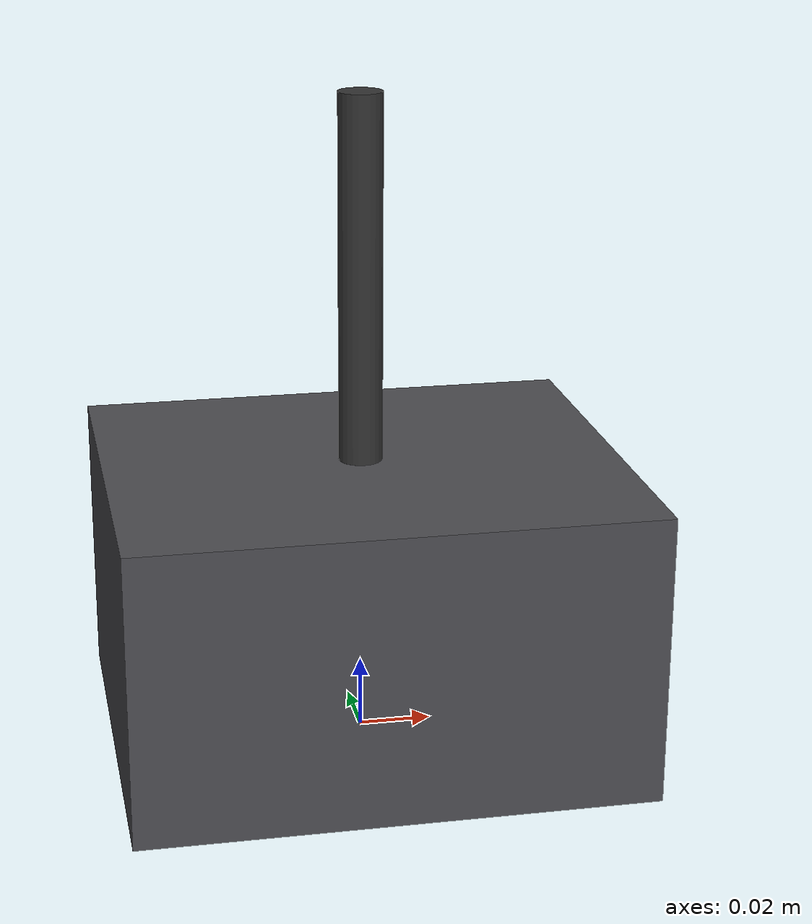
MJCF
<?xml version="1.0" encoding="utf-8"?>
<mujoco model="hardness_tester">
  <compiler angle="radian" autolimits="true"/>
  <default>
    <default class="body"><geom contype="1" conaffinity="1"/></default>
  </default>
  <worldbody>
    <body name="base">
      <geom type="box" size="0.07 0.06 0.04" pos="0 0 0.04" rgba="0.3 0.3 0.32 1" class="body"/>
      <geom type="box" size="0.021 0.003 0.01" pos="-0.035 -0.054 0.06" rgba="0.9 0.7 0.1 1" class="body"/>
      <body name="plunger" pos="0 0 0.13">
        <joint name="plunger_joint" type="slide" axis="0 0 1" range="-0.04 0" damping="0.5" frictionloss="0.5"/>
  <geom type="cylinder" size="0.006 0.05" pos="0 0 0" rgba="0.2 0.2 0.2 1" class="body"/>
      </body>
    </body>
  </worldbody>
</mujoco>
